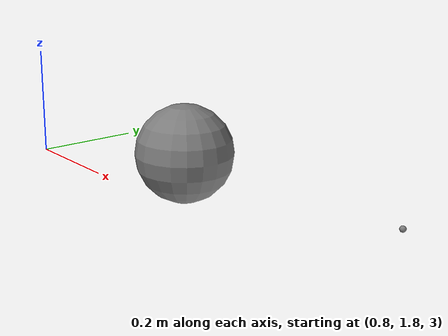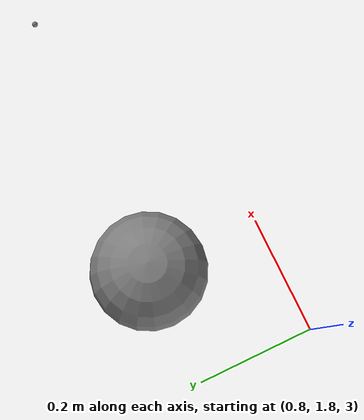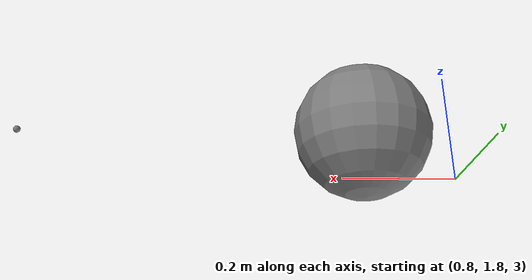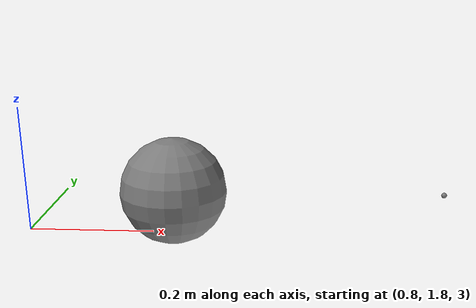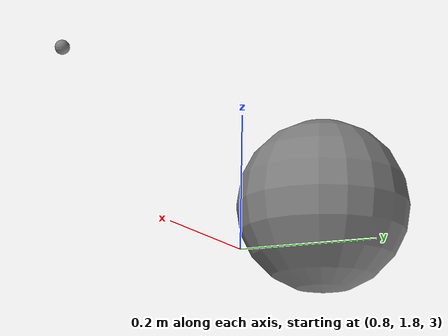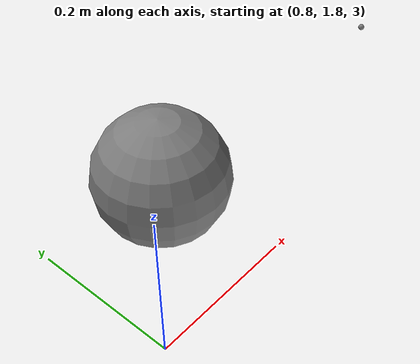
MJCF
<mujoco model="framepos_site">
            <worldbody>
                <body name="b1" pos="1 2 3">
                    <joint name="j1" type="free"/>
                    <geom type="sphere" size="0.1" mass="1.0"/>
                    <site name="s1" pos="0.5 0 0"/>
                </body>
            </worldbody>
            <sensor>
                <framepos site="s1"/>
            </sensor>
        </mujoco>
